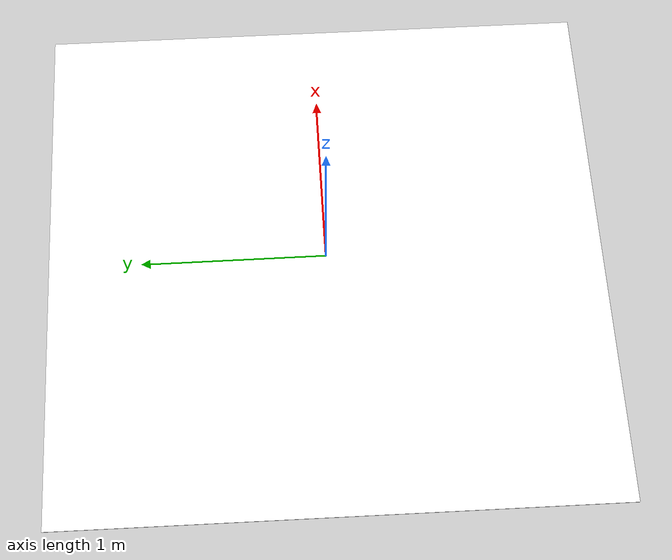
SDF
<?xml version="1.0" encoding="UTF-8"?>
<sdf version="1.9">
  <world name="cross_marker">
    <physics type="ode">
      <max_step_size>0.004</max_step_size>
      <real_time_factor>1.0</real_time_factor>
      <real_time_update_rate>250</real_time_update_rate>
    </physics>
    <gravity>0 0 -9.8</gravity>
    <magnetic_field>6e-06 2.3e-05 -4.2e-05</magnetic_field>
    <atmosphere type="adiabatic"/>
    <scene>
      <grid>false</grid>
      <ambient>0.4 0.4 0.4 1</ambient>
      <background>0.7 0.7 0.7 1</background>
      <shadows>true</shadows>
    </scene>
    <model name="ground_plane">
      <static>true</static>
      <link name="link">
        <collision name="collision">
          <geometry>
            <plane>
              <normal>0 0 1</normal>
              <size>1 1</size>
            </plane>
          </geometry>
          <surface>
            <friction>
              <ode/>
            </friction>
            <bounce/>
            <contact/>
          </surface>
        </collision>
        <visual name="visual">
          <geometry>
            <plane>
              <normal>0 0 1</normal>
              <size>100 100</size>
            </plane>
          </geometry>
          <material>
            <ambient>0.8 0.8 0.8 1</ambient>
            <diffuse>0.8 0.8 0.8 1</diffuse>
            <specular>0.8 0.8 0.8 1</specular>
          </material>
        </visual>
        <pose>0 0 0 0 -0 0</pose>
        <inertial>
          <pose>0 0 0 0 -0 0</pose>
          <mass>1</mass>
          <inertia>
            <ixx>1</ixx>
            <ixy>0</ixy>
            <ixz>0</ixz>
            <iyy>1</iyy>
            <iyz>0</iyz>
            <izz>1</izz>
          </inertia>
        </inertial>
        <enable_wind>false</enable_wind>
      </link>
      <pose>0 0 0 0 -0 0</pose>
      <self_collide>false</self_collide>
    </model>
    <light name="sunUTC" type="directional">
      <pose>0 0 500 0 -0 0</pose>
      <cast_shadows>true</cast_shadows>
      <intensity>1</intensity>
      <direction>0.001 0.625 -0.78</direction>
      <diffuse>0.904 0.904 0.904 1</diffuse>
      <specular>0.271 0.271 0.271 1</specular>
      <attenuation>
        <range>2000</range>
        <linear>0</linear>
        <constant>1</constant>
        <quadratic>0</quadratic>
      </attenuation>
      <spot>
        <inner_angle>0</inner_angle>
        <outer_angle>0</outer_angle>
        <falloff>0</falloff>
      </spot>
    </light>
    <spherical_coordinates>
      <surface_model>EARTH_WGS84</surface_model>
      <world_frame_orientation>ENU</world_frame_orientation>
      <latitude_deg>47.397971057728974</latitude_deg>
      <longitude_deg> 8.546163739800146</longitude_deg>
      <elevation>0</elevation>
    </spherical_coordinates>

    <include>
      <uri>model://cross_marker</uri>
    </include>
  </world>
</sdf>

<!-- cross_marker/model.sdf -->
<sdf version='1.9'>
  <model name='cross_marker'>
    <static>true</static>
    <pose>0 0 0.001 0 0 0</pose>
    <link name='base'>
      <visual name='base_visual'>
        <geometry>
          <plane>
            <normal>0 0 1</normal>
            <size>3.0 3.0</size>  <!-- resized 2026-08-01: stroke ~7.2px at 5m (270*0.045*3.0/5), matches largest arucotag variant tried (2.5m, for ~10m decode range) -->
          </plane>
        </geometry>
        <material>
          <diffuse>1 1 1 1</diffuse>
          <specular>0.4 0.4 0.4 1</specular>
          <pbr>
            <metal>
              <albedo_map>model://cross_marker/cross_marker.png</albedo_map>
              <metalness>0.0</metalness>
              <roughness>1.0</roughness>
            </metal>
          </pbr>
        </material>
      </visual>
    </link>
  </model>
</sdf>
